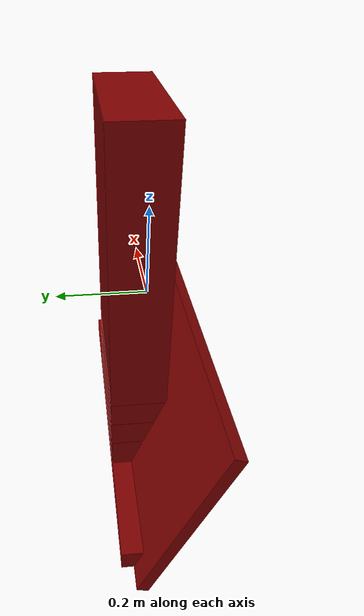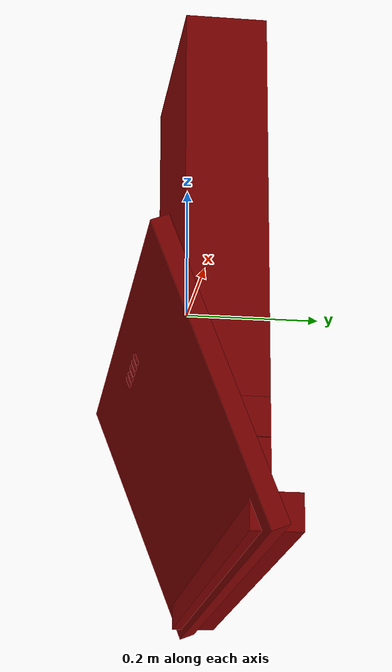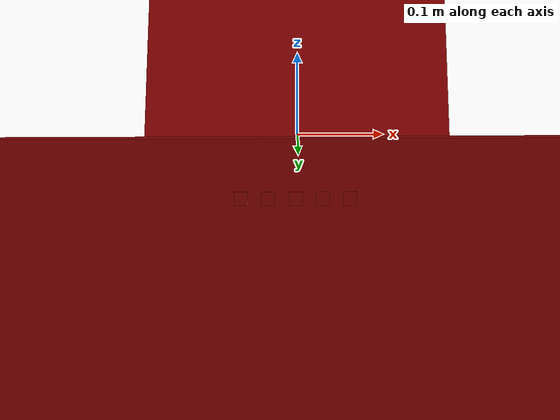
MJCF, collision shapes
<?xml version='1.0' encoding='UTF-8'?>
<mujoco model="model">
  <compiler angle="radian"/>
  <asset>
    <mesh file="visuals/Body001.obj" name="Body001_vis"/>
    <mesh file="visuals/Button001.obj" name="Button001_vis"/>
    <mesh file="visuals/Button002.obj" name="Button002_vis"/>
    <mesh file="visuals/Button003.obj" name="Button003_vis"/>
    <mesh file="visuals/Button004.obj" name="Button004_vis"/>
    <mesh file="visuals/Button005.obj" name="Button005_vis"/>
    <texture file="visuals/T_BC001.png" name="Body001_material" type="2d"/>
    <material name="Body001_material" rgba="1 1 1 1.0" texture="Body001_material" shininess="0.6159252524375916" specular="0.3103448502657381"/>
    <texture file="visuals/T_BC001.png" name="Button001_material" type="2d"/>
    <material name="Button001_material" rgba="1 1 1 1.0" texture="Button001_material" shininess="0.6159252524375916" specular="0.3103448502657381"/>
    <texture file="visuals/T_BC001.png" name="Button002_material" type="2d"/>
    <material name="Button002_material" rgba="1 1 1 1.0" texture="Button002_material" shininess="0.6159252524375916" specular="0.3103448502657381"/>
    <texture file="visuals/T_BC001.png" name="Button003_material" type="2d"/>
    <material name="Button003_material" rgba="1 1 1 1.0" texture="Button003_material" shininess="0.6159252524375916" specular="0.3103448502657381"/>
    <texture file="visuals/T_BC001.png" name="Button004_material" type="2d"/>
    <material name="Button004_material" rgba="1 1 1 1.0" texture="Button004_material" shininess="0.6159252524375916" specular="0.3103448502657381"/>
    <texture file="visuals/T_BC001.png" name="Button005_material" type="2d"/>
    <material name="Button005_material" rgba="1 1 1 1.0" texture="Button005_material" shininess="0.6159252524375916" specular="0.3103448502657381"/>
  </asset>
  <default>
    <default class="visual">
      <geom conaffinity="0" contype="0" group="1" type="mesh"/>
    </default>
    <default class="collision">
      <geom group="0" rgba="0.5 0 0 0.5"/>
    </default>
    <default class="spawn">
      <geom group="0" rgba="1 1 1 0.5" contype="0" conaffinity="0"/>
      <site group="0" rgba="1 1 1 0.5"/>
    </default>
    <default class="region">
      <geom group="1" conaffinity="0" contype="0" rgba="0 1 0 0"/>
    </default>
  </default>
  <worldbody>
    <body>
      <body name="object">
        <geom mesh="Body001_vis" type="mesh" solimp="0.998 0.998 0.001" solref="0.001 1" density="100" friction="0.95 0.3 0.1" class="visual" material="Body001_material"/>
        <geom class="collision" type="box" pos="-0.00047654082300141454 0.036292847245931625 0.11806812882423401" size="0.1729690581560135 0.060028936713933945 0.29116693139076233" quat="1.0 0.0 0.0 0.0"/>
        <geom class="collision" type="box" pos="-0.00047654082300141454 0.036292847245931625 -0.20133203268051147" size="0.1729690581560135 0.060028936713933945 0.029010536149144173" quat="1.0 0.0 0.0 0.0"/>
        <geom class="collision" type="box" pos="-0.00047654082300141454 0.04793693497776985 -0.26139259338378906" size="0.1729690581560135 0.04838484898209572 0.03028729185461998" quat="1.0 0.0 0.0 0.0"/>
        <geom class="collision" type="box" pos="-0.00047654082300141454 0.06213424727320671 -0.3271380364894867" size="0.1729690581560135 0.03418753668665886 0.03501170128583908" quat="1.0 0.0 0.0 0.0"/>
        <geom class="collision" type="box" pos="0.0004976977943442762 0.06213424727320671 -0.3861043453216553" size="0.4025149643421173 0.03418753668665886 0.024611853063106537" quat="1.0 0.0 0.0 0.0"/>
        <geom class="collision" type="box" pos="-7.186256698332727e-05 -0.015719495713710785 -0.2219235599040985" size="0.4501383900642395 0.012642232701182365 0.20768512785434723" quat="0.983300507068634 0.1819894015789032 -4.216618354321328e-17 -3.3973894910353183e-19"/>
        <body name="Button001">
          <joint axis="-1.3681741039555714e-17 0.9383828639984131 0.34559735655784607" pos="-0.056917704641819 -0.0805220827460289 -0.09023746848106384" limited="true" name="Button001_joint" range="0.0 0.001" type="slide" damping="1" frictionloss="1" armature=".01" stiffness="0.05"/>
          <geom mesh="Button001_vis" type="mesh" solimp="0.998 0.998 0.001" solref="0.001 1" density="100" friction="0.95 0.3 0.1" class="visual" material="Button001_material"/>
          <geom class="collision" type="box" pos="-0.05717410519719124 -0.08086919784545898 -0.09063208103179932" size="0.007078930269926786 0.0010401803301647305 0.007181541062891483" quat="0.983300507068634 0.1819894015789032 -4.216618354321328e-17 -3.3973894910353183e-19"/>
        </body>
        <body name="Button002">
          <joint axis="-1.405067186456049e-17 0.9367213845252991 0.35007575154304504" pos="-0.029297474771738052 -0.0805220827460289 -0.09023746848106384" limited="true" name="Button002_joint" range="0.0 0.001" type="slide" damping="1" frictionloss="1" armature=".01" stiffness="0.05"/>
          <geom mesh="Button002_vis" type="mesh" solimp="0.998 0.998 0.001" solref="0.001 1" density="100" friction="0.95 0.3 0.1" class="visual" material="Button002_material"/>
          <geom class="collision" type="box" pos="-0.02937600389122963 -0.08086919784545898 -0.09063208103179932" size="0.007078930269926786 0.0010401803301647305 0.007181541062891483" quat="0.983300507068634 0.1819894015789032 -4.216618354321328e-17 -3.3973894910353183e-19"/>
        </body>
        <body name="Button003">
          <joint axis="-1.5303418704298574e-17 0.9310795664787292 0.36481624841690063" pos="-0.0002926040906459093 -0.0805220827460289 -0.09023746848106384" limited="true" name="Button003_joint" range="0.0 0.001" type="slide" damping="1" frictionloss="1" armature=".01" stiffness="0.05"/>
          <geom mesh="Button003_vis" type="mesh" solimp="0.998 0.998 0.001" solref="0.001 1" density="100" friction="0.95 0.3 0.1" class="visual" material="Button003_material"/>
          <geom class="collision" type="box" pos="-0.000313756987452507 -0.08086919784545898 -0.09063208103179932" size="0.007078930269926786 0.0010401803301647305 0.007181541062891483" quat="0.983300507068634 0.1819894015789032 -4.216618354321328e-17 -3.3973894910353183e-19"/>
        </body>
        <body name="Button004">
          <joint axis="-1.5060358298744767e-17 0.9321741461753845 0.36201003193855286" pos="0.027422912418842316 -0.0805220827460289 -0.09023746848106384" limited="true" name="Button004_joint" range="0.0 0.001" type="slide" damping="1" frictionloss="1" armature=".01" stiffness="0.05"/>
          <geom mesh="Button004_vis" type="mesh" solimp="0.998 0.998 0.001" solref="0.001 1" density="100" friction="0.95 0.3 0.1" class="visual" material="Button004_material"/>
          <geom class="collision" type="box" pos="0.027484344318509102 -0.08086919784545898 -0.09063208103179932" size="0.007078930269926786 0.0010401803301647305 0.007181541062891483" quat="0.983300507068634 0.1819894015789032 -4.216618354321328e-17 -3.3973894910353183e-19"/>
        </body>
        <body name="Button005">
          <joint axis="-1.5537806948310375e-17 0.9300239086151123 0.3674989640712738" pos="0.055811136960983276 -0.0805220827460289 -0.09023746848106384" limited="true" name="Button005_joint" range="0.0 0.001" type="slide" damping="1" frictionloss="1" armature=".01" stiffness="0.05"/>
          <geom mesh="Button005_vis" type="mesh" solimp="0.998 0.998 0.001" solref="0.001 1" density="100" friction="0.95 0.3 0.1" class="visual" material="Button005_material"/>
          <geom class="collision" type="box" pos="0.05557790398597717 -0.08086919784545898 -0.09063208103179932" size="0.007078930269926786 0.0010401803301647305 0.007181541062891483" quat="0.983300507068634 0.1819894015789032 -4.216618354321328e-17 -3.3973894910353183e-19"/>
        </body>
        <geom class="region" name="reg_main" type="box" pos="-7.450580596923828e-09 -1.1175870895385742e-08 0.0" size="0.4492674171924591 0.09528280794620514 0.40920141339302063"/>
      </body>
    </body>
  </worldbody>
  <actuator>
    <motor name="Button001_joint_actuator" joint="Button001_joint" gear="0.5"/>
    <motor name="Button002_joint_actuator" joint="Button002_joint" gear="0.5"/>
    <motor name="Button003_joint_actuator" joint="Button003_joint" gear="0.5"/>
    <motor name="Button004_joint_actuator" joint="Button004_joint" gear="0.5"/>
    <motor name="Button005_joint_actuator" joint="Button005_joint" gear="0.5"/>
  </actuator>
</mujoco>
